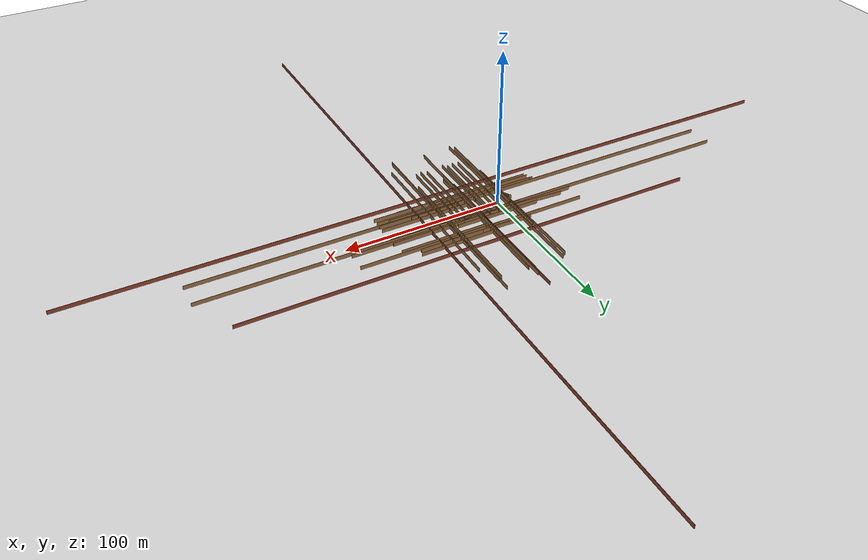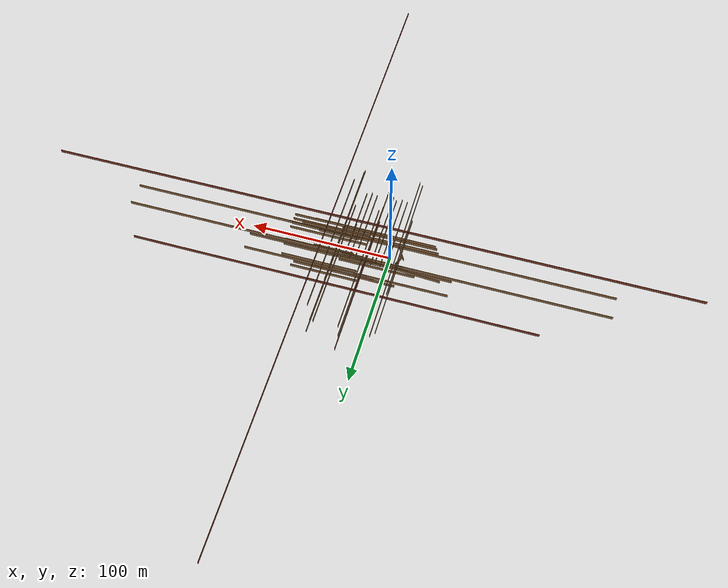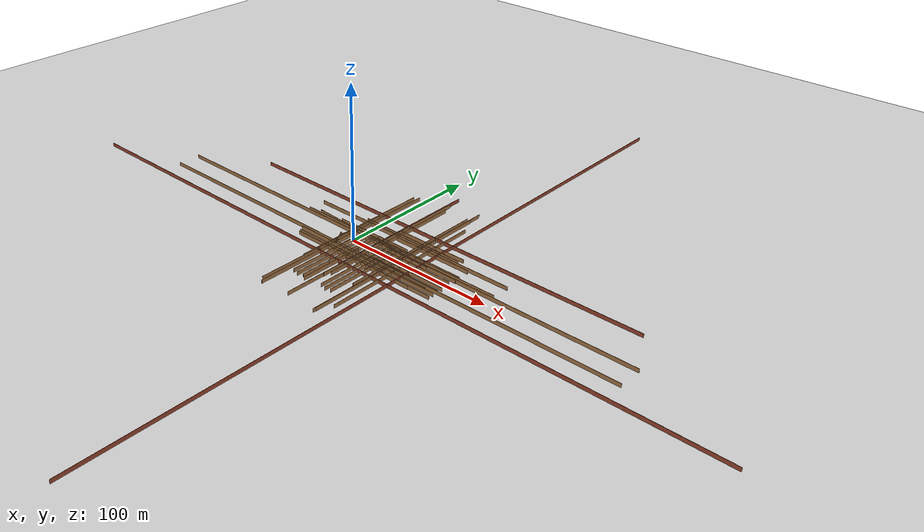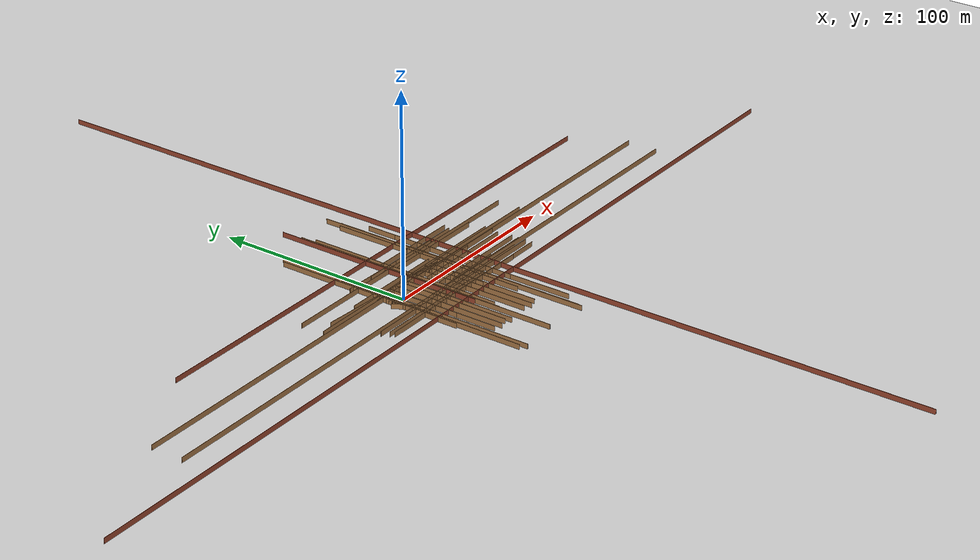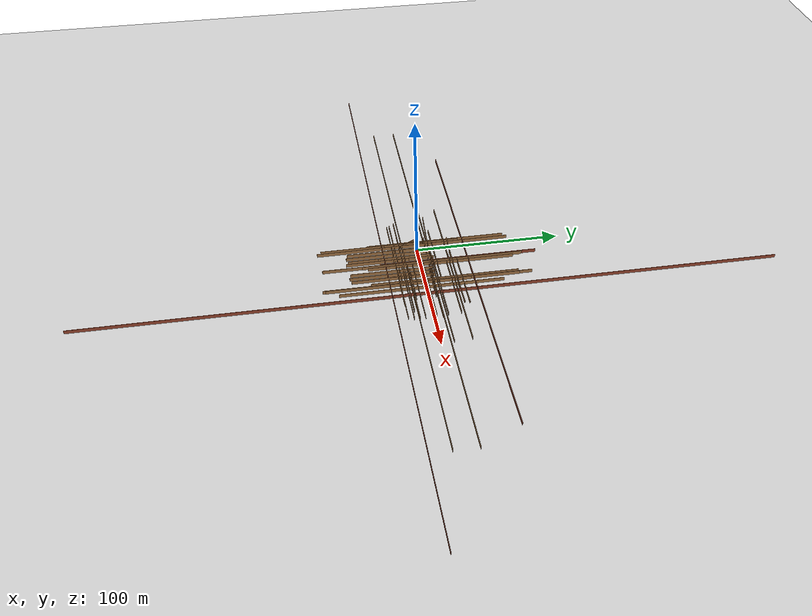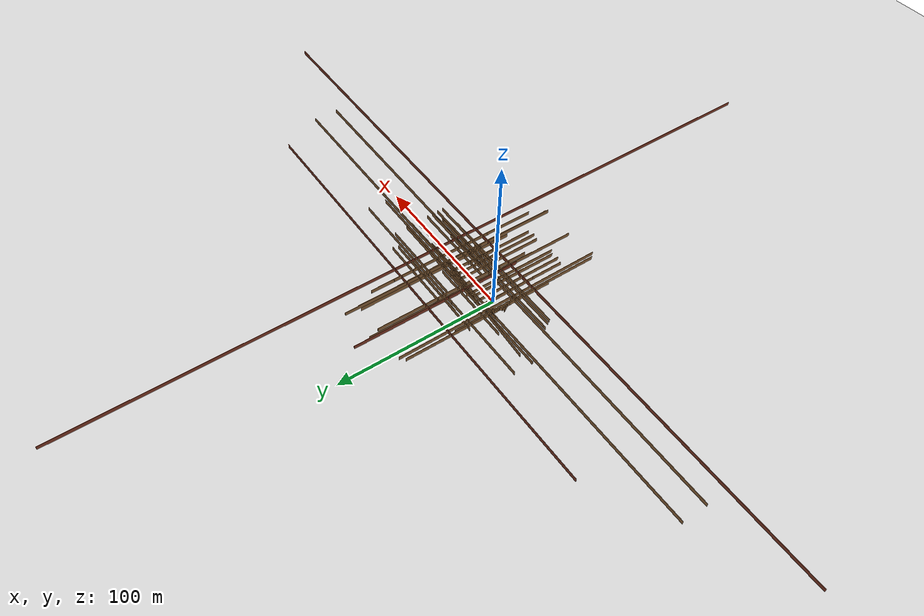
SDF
<sdf version="1.6">
 <world name="default">
  <model name="ground_plane">
   <static>1</static>
   <link name="link">
    <collision name="collision">
     <geometry><plane><normal>0 0 1</normal><size>1000 700</size></plane></geometry>
     <surface><friction><ode><mu>100</mu><mu2>50</mu2></ode></friction></surface>
    </collision>
    <visual name="visual">
     <cast_shadows>0</cast_shadows>
     <geometry><plane><normal>0 0 1</normal><size>1000 700</size></plane></geometry>
     <material>
      <ambient>1.0 1.0 1.0 1.0</ambient>
      <diffuse>0.8 0.8 0.8 1.0</diffuse>
      <specular>0.01 0.01 0.01 1.000000</specular>
     </material>
    </visual>
   </link>
  </model>
  <model name="NamedLocations">
   <static>true</static>
   <link name="DefaultStart"><pose>380 -17 0 0 0 3.14</pose></link>
  </model>
  <model name="floorPlan">
   <pose>-1.03517 -1.87284 0 0 -0 0</pose>
   <link name="Wall_105">
    <collision name="Wall_105_Collision">
     <geometry><box><size>108.30 0.15 2.50</size></box></geometry>
     <pose>0 0 1.25 0 -0 0</pose>
    </collision>
    <visual name="Wall_105_Visual">
     <pose>0 0 1.25 0 -0 0</pose>
     <geometry><box><size>108.30 0.15 2.50</size></box></geometry>
     <material>
      <script><uri>file://media/materials/scripts/gazebo.material</uri><name>Gazebo/Bricks</name></script>
      <ambient>1 1 1 1</ambient>
     </material>
     <meta><layer>0</layer></meta>
    </visual>
    <pose>16.1718 28.4394 0 0 0 -1.5708</pose>
   </link>
   <link name="Wall_107">
    <collision name="Wall_107_Collision">
     <geometry><box><size>8.30 0.15 2.50</size></box></geometry>
     <pose>0 0 1.25 0 -0 0</pose>
    </collision>
    <visual name="Wall_107_Visual">
     <pose>0 0 1.25 0 -0 0</pose>
     <geometry><box><size>8.30 0.15 2.50</size></box></geometry>
     <material>
      <script><uri>file://media/materials/scripts/gazebo.material</uri><name>Gazebo/Wood</name></script>
      <ambient>1 1 1 1</ambient>
     </material>
     <meta><layer>0</layer></meta>
    </visual>
    <pose>16.5968 22.0144 0 0 -0 0</pose>
   </link>
   <link name="Wall_109">
    <collision name="Wall_109_Collision">
     <geometry><box><size>97.90 0.15 2.50</size></box></geometry>
     <pose>0 0 1.25 0 -0 0</pose>
    </collision>
    <visual name="Wall_109_Visual">
     <pose>0 0 1.25 0 -0 0</pose>
     <geometry><box><size>97.90 0.15 2.50</size></box></geometry>
     <material>
      <script><uri>file://media/materials/scripts/gazebo.material</uri><name>Gazebo/Wood</name></script>
      <ambient>1 1 1 1</ambient>
     </material>
     <meta><layer>0</layer></meta>
    </visual>
    <pose>39.004 -15.7975 0 0 0 -1.5708</pose>
   </link>
   <link name="Wall_111">
    <collision name="Wall_111_Collision">
     <geometry><box><size>66.60 0.15 2.50</size></box></geometry>
     <pose>0 0 1.25 0 -0 0</pose>
    </collision>
    <visual name="Wall_111_Visual">
     <pose>0 0 1.25 0 -0 0</pose>
     <geometry><box><size>66.60 0.15 2.50</size></box></geometry>
     <material>
      <script><uri>file://media/materials/scripts/gazebo.material</uri><name>Gazebo/Wood</name></script>
      <ambient>1 1 1 1</ambient>
     </material>
     <meta><layer>0</layer></meta>
    </visual>
    <pose>35.079 -9.99746 0 0 -0 3.14159</pose>
   </link>
   <link name="Wall_112">
    <collision name="Wall_112_Collision">
     <geometry><box><size>16.70 0.15 2.50</size></box></geometry>
     <pose>0 0 1.25 0 -0 0</pose>
    </collision>
    <visual name="Wall_112_Visual">
     <pose>0 0 1.25 0 -0 0</pose>
     <geometry><box><size>16.70 0.15 2.50</size></box></geometry>
     <material>
      <script><uri>file://media/materials/scripts/gazebo.material</uri><name>Gazebo/Wood</name></script>
      <ambient>1 1 1 1</ambient>
     </material>
     <meta><layer>0</layer></meta>
    </visual>
    <pose>31.154 -10.9225 0 0 0 -1.5708</pose>
   </link>
   <link name="Wall_114">
    <collision name="Wall_114_Collision">
     <geometry><box><size>56.20 0.15 2.50</size></box></geometry>
     <pose>0 0 1.25 0 -0 0</pose>
    </collision>
    <visual name="Wall_114_Visual">
     <pose>0 0 1.25 0 -0 0</pose>
     <geometry><box><size>56.20 0.15 2.50</size></box></geometry>
     <material>
      <script><uri>file://media/materials/scripts/gazebo.material</uri><name>Gazebo/Wood</name></script>
      <ambient>1 1 1 1</ambient>
     </material>
     <meta><layer>0</layer></meta>
    </visual>
    <pose>31.5938 -18.4328 0 0 -0 1.5708</pose>
   </link>
   <link name="Wall_115">
    <collision name="Wall_115_Collision">
     <geometry><box><size>64.60 0.15 2.50</size></box></geometry>
     <pose>0 0 1.25 0 -0 0</pose>
    </collision>
    <visual name="Wall_115_Visual">
     <pose>0 0 1.25 0 -0 0</pose>
     <geometry><box><size>64.60 0.15 2.50</size></box></geometry>
     <material>
      <script><uri>file://media/materials/scripts/gazebo.material</uri><name>Gazebo/Wood</name></script>
      <ambient>1 1 1 1</ambient>
     </material>
     <meta><layer>0</layer></meta>
    </visual>
    <pose>27.7938 -15.1328 0 0 -0 3.14159</pose>
   </link>
   <link name="Wall_116">
    <collision name="Wall_116_Collision">
     <geometry><box><size>56.20 0.15 2.50</size></box></geometry>
     <pose>0 0 1.25 0 -0 0</pose>
    </collision>
    <visual name="Wall_116_Visual">
     <pose>0 0 1.25 0 -0 0</pose>
     <geometry><box><size>56.20 0.15 2.50</size></box></geometry>
     <material>
      <script><uri>file://media/materials/scripts/gazebo.material</uri><name>Gazebo/Wood</name></script>
      <ambient>1 1 1 1</ambient>
     </material>
     <meta><layer>0</layer></meta>
    </visual>
    <pose>23.9938 -18.4328 0 0 0 -1.5708</pose>
   </link>
   <link name="Wall_118">
    <collision name="Wall_118_Collision">
     <geometry><box><size>8.30 0.15 2.50</size></box></geometry>
     <pose>0 0 1.25 0 -0 0</pose>
    </collision>
    <visual name="Wall_118_Visual">
     <pose>0 0 1.25 0 -0 0</pose>
     <geometry><box><size>8.30 0.15 2.50</size></box></geometry>
     <material>
      <script><uri>file://media/materials/scripts/gazebo.material</uri><name>Gazebo/Wood</name></script>
      <ambient>1 1 1 1</ambient>
     </material>
     <meta><layer>0</layer></meta>
    </visual>
    <pose>24.1778 -10.3922 0 0 0 -1.5708</pose>
   </link>
   <link name="Wall_120">
    <collision name="Wall_120_Collision">
     <geometry><box><size>97.90 0.15 2.50</size></box></geometry>
     <pose>0 0 1.25 0 -0 0</pose>
    </collision>
    <visual name="Wall_120_Visual">
     <pose>0 0 1.25 0 -0 0</pose>
     <geometry><box><size>97.90 0.15 2.50</size></box></geometry>
     <material>
      <script><uri>file://media/materials/scripts/gazebo.material</uri><name>Gazebo/Wood</name></script>
      <ambient>1 1 1 1</ambient>
     </material>
     <meta><layer>0</layer></meta>
    </visual>
    <pose>18.2324 -9.96721 0 0 -0 3.14159</pose>
   </link>
   <link name="Wall_121">
    <collision name="Wall_121_Collision">
     <geometry><box><size>10.40 0.15 2.50</size></box></geometry>
     <pose>0 0 1.25 0 -0 0</pose>
    </collision>
    <visual name="Wall_121_Visual">
     <pose>0 0 1.25 0 -0 0</pose>
     <geometry><box><size>10.40 0.15 2.50</size></box></geometry>
     <material>
      <script><uri>file://media/materials/scripts/gazebo.material</uri><name>Gazebo/Wood</name></script>
      <ambient>1 1 1 1</ambient>
     </material>
     <meta><layer>0</layer></meta>
    </visual>
    <pose>12.4324 -10.5172 0 0 0 -1.5708</pose>
   </link>
   <link name="Wall_123">
    <collision name="Wall_123_Collision">
     <geometry><box><size>97.90 0.15 2.50</size></box></geometry>
     <pose>0 0 1.25 0 -0 0</pose>
    </collision>
    <visual name="Wall_123_Visual">
     <pose>0 0 1.25 0 -0 0</pose>
     <geometry><box><size>97.90 0.15 2.50</size></box></geometry>
     <material>
      <script><uri>file://media/materials/scripts/gazebo.material</uri><name>Gazebo/Wood</name></script>
      <ambient>1 1 1 1</ambient>
     </material>
     <meta><layer>0</layer></meta>
    </visual>
    <pose>16.8339 -15.8579 0 0 0 -1.5708</pose>
   </link>
   <link name="Wall_125">
    <collision name="Wall_125_Collision">
     <geometry><box><size>60.40 0.15 2.50</size></box></geometry>
     <pose>0 0 1.25 0 -0 0</pose>
    </collision>
    <visual name="Wall_125_Visual">
     <pose>0 0 1.25 0 -0 0</pose>
     <geometry><box><size>60.40 0.15 2.50</size></box></geometry>
     <material>
      <script><uri>file://media/materials/scripts/gazebo.material</uri><name>Gazebo/Wood</name></script>
      <ambient>1 1 1 1</ambient>
     </material>
     <meta><layer>0</layer></meta>
    </visual>
    <pose>12.1458 -18.0541 0 0 0 -1.5708</pose>
   </link>
   <link name="Wall_127">
    <collision name="Wall_127_Collision">
     <geometry><box><size>95.80 0.15 2.50</size></box></geometry>
     <pose>0 0 1.25 0 -0 0</pose>
    </collision>
    <visual name="Wall_127_Visual">
     <pose>0 0 1.25 0 -0 0</pose>
     <geometry><box><size>95.80 0.15 2.50</size></box></geometry>
     <material>
      <script><uri>file://media/materials/scripts/gazebo.material</uri><name>Gazebo/Wood</name></script>
      <ambient>1 1 1 1</ambient>
     </material>
     <meta><layer>0</layer></meta>
    </visual>
    <pose>-5.05877 -16.1593 0 0 0 -1.5708</pose>
   </link>
   <link name="Wall_164">
    <collision name="Wall_164_Collision">
     <geometry><box><size>27.10 0.15 2.50</size></box></geometry>
     <pose>0 0 1.25 0 -0 0</pose>
    </collision>
    <visual name="Wall_164_Visual">
     <pose>0 0 1.25 0 -0 0</pose>
     <geometry><box><size>27.10 0.15 2.50</size></box></geometry>
     <material>
      <script><uri>file://media/materials/scripts/gazebo.material</uri><name>Gazebo/Wood</name></script>
      <ambient>1 1 1 1</ambient>
     </material>
     <meta><layer>0</layer></meta>
    </visual>
    <pose>-5.05442 -6.49986 0 0 -0 1.5708</pose>
   </link>
   <link name="Wall_165">
    <collision name="Wall_165_Collision">
     <geometry><box><size>4.20 0.15 2.50</size></box></geometry>
     <pose>0 0 1.25 0 -0 0</pose>
    </collision>
    <visual name="Wall_165_Visual">
     <pose>0 0 1.25 0 -0 0</pose>
     <geometry><box><size>4.20 0.15 2.50</size></box></geometry>
     <material>
      <script><uri>file://media/materials/scripts/gazebo.material</uri><name>Gazebo/Wood</name></script>
      <ambient>1 1 1 1</ambient>
     </material>
     <meta><layer>0</layer></meta>
    </visual>
    <pose>-5.09971 -4.78082 0 0 -0 1.8326</pose>
   </link>
   <link name="Wall_166">
    <collision name="Wall_166_Collision">
     <geometry><box><size>12.50 0.15 2.50</size></box></geometry>
     <pose>0 0 1.25 0 -0 0</pose>
    </collision>
    <visual name="Wall_166_Visual">
     <pose>0 0 1.25 0 -0 0</pose>
     <geometry><box><size>12.50 0.15 2.50</size></box></geometry>
     <material>
      <script><uri>file://media/materials/scripts/gazebo.material</uri><name>Gazebo/Wood</name></script>
      <ambient>1 1 1 1</ambient>
     </material>
     <meta><layer>0</layer></meta>
    </visual>
    <pose>-5.4825 -4.02722 0 0 -0 2.0944</pose>
   </link>
   <link name="Wall_167">
    <collision name="Wall_167_Collision">
     <geometry><box><size>6.20 0.15 2.50</size></box></geometry>
     <pose>0 0 1.25 0 -0 0</pose>
    </collision>
    <visual name="Wall_167_Visual">
     <pose>0 0 1.25 0 -0 0</pose>
     <geometry><box><size>6.20 0.15 2.50</size></box></geometry>
     <material>
      <script><uri>file://media/materials/scripts/gazebo.material</uri><name>Gazebo/Wood</name></script>
      <ambient>1 1 1 1</ambient>
     </material>
     <meta><layer>0</layer></meta>
    </visual>
    <pose>-5.82 -3.14265 0 0 -0 1.5708</pose>
   </link>
   <link name="Wall_168">
    <collision name="Wall_168_Collision">
     <geometry><box><size>8.30 0.15 2.50</size></box></geometry>
     <pose>0 0 1.25 0 -0 0</pose>
    </collision>
    <visual name="Wall_168_Visual">
     <pose>0 0 1.25 0 -0 0</pose>
     <geometry><box><size>8.30 0.15 2.50</size></box></geometry>
     <material>
      <script><uri>file://media/materials/scripts/gazebo.material</uri><name>Gazebo/Wood</name></script>
      <ambient>1 1 1 1</ambient>
     </material>
     <meta><layer>0</layer></meta>
    </visual>
    <pose>-5.93 -2.43213 0 0 -0 1.8326</pose>
   </link>
   <link name="Wall_171">
    <collision name="Wall_171_Collision">
     <geometry><box><size>6.20 0.15 2.50</size></box></geometry>
     <pose>0 0 1.25 0 -0 0</pose>
    </collision>
    <visual name="Wall_171_Visual">
     <pose>0 0 1.25 0 -0 0</pose>
     <geometry><box><size>6.20 0.15 2.50</size></box></geometry>
     <material>
      <script><uri>file://media/materials/scripts/gazebo.material</uri><name>Gazebo/Wood</name></script>
      <ambient>1 1 1 1</ambient>
     </material>
     <meta><layer>0</layer></meta>
    </visual>
    <pose>-6.04 -0.021614 0 0 -0 1.5708</pose>
   </link>
   <link name="Wall_172">
    <collision name="Wall_172_Collision">
     <geometry><box><size>10.40 0.15 2.50</size></box></geometry>
     <pose>0 0 1.25 0 -0 0</pose>
    </collision>
    <visual name="Wall_172_Visual">
     <pose>0 0 1.25 0 -0 0</pose>
     <geometry><box><size>10.40 0.15 2.50</size></box></geometry>
     <material>
      <script><uri>file://media/materials/scripts/gazebo.material</uri><name>Gazebo/Wood</name></script>
      <ambient>1 1 1 1</ambient>
     </material>
     <meta><layer>0</layer></meta>
    </visual>
    <pose>-6.04 0.828386 0 0 -0 1.5708</pose>
   </link>
   <link name="Wall_173">
    <collision name="Wall_173_Collision">
     <geometry><box><size>6.20 0.15 2.50</size></box></geometry>
     <pose>0 0 1.25 0 -0 0</pose>
    </collision>
    <visual name="Wall_173_Visual">
     <pose>0 0 1.25 0 -0 0</pose>
     <geometry><box><size>6.20 0.15 2.50</size></box></geometry>
     <material>
      <script><uri>file://media/materials/scripts/gazebo.material</uri><name>Gazebo/Wood</name></script>
      <ambient>1 1 1 1</ambient>
     </material>
     <meta><layer>0</layer></meta>
    </visual>
    <pose>-6.04 1.67839 0 0 -0 1.5708</pose>
   </link>
   <link name="Wall_174">
    <collision name="Wall_174_Collision">
     <geometry><box><size>6.20 0.15 2.50</size></box></geometry>
     <pose>0 0 1.25 0 -0 0</pose>
    </collision>
    <visual name="Wall_174_Visual">
     <pose>0 0 1.25 0 -0 0</pose>
     <geometry><box><size>6.20 0.15 2.50</size></box></geometry>
     <material>
      <script><uri>file://media/materials/scripts/gazebo.material</uri><name>Gazebo/Wood</name></script>
      <ambient>1 1 1 1</ambient>
     </material>
     <meta><layer>0</layer></meta>
    </visual>
    <pose>-5.96235 2.26816 0 0 -0 1.309</pose>
   </link>
   <link name="Wall_175">
    <collision name="Wall_175_Collision">
     <geometry><box><size>5.70 0.15 2.50</size></box></geometry>
     <pose>0 0 1.25 0 -0 0</pose>
    </collision>
    <visual name="Wall_175_Visual">
     <pose>0 0 1.25 0 -0 0</pose>
     <geometry><box><size>5.70 0.15 2.50</size></box></geometry>
     <material>
      <script><uri>file://media/materials/scripts/gazebo.material</uri><name>Gazebo/Wood</name></script>
      <ambient>1 1 1 1</ambient>
     </material>
     <meta><layer>0</layer></meta>
    </visual>
    <pose>-5.82391 2.82035 0 0 -0 1.34312</pose>
   </link>
   <link name="Wall_176">
    <collision name="Wall_176_Collision">
     <geometry><box><size>7.30 0.15 2.50</size></box></geometry>
     <pose>0 0 1.25 0 -0 0</pose>
    </collision>
    <visual name="Wall_176_Visual">
     <pose>0 0 1.25 0 -0 0</pose>
     <geometry><box><size>7.30 0.15 2.50</size></box></geometry>
     <material>
      <script><uri>file://media/materials/scripts/gazebo.material</uri><name>Gazebo/Wood</name></script>
      <ambient>1 1 1 1</ambient>
     </material>
     <meta><layer>0</layer></meta>
    </visual>
    <pose>-5.60659 3.41318 0 0 -0 1.12842</pose>
   </link>
   <link name="Wall_177">
    <collision name="Wall_177_Collision">
     <geometry><box><size>7.00 0.15 2.50</size></box></geometry>
     <pose>0 0 1.25 0 -0 0</pose>
    </collision>
    <visual name="Wall_177_Visual">
     <pose>0 0 1.25 0 -0 0</pose>
     <geometry><box><size>7.00 0.15 2.50</size></box></geometry>
     <material>
      <script><uri>file://media/materials/scripts/gazebo.material</uri><name>Gazebo/Wood</name></script>
      <ambient>1 1 1 1</ambient>
     </material>
     <meta><layer>0</layer></meta>
    </visual>
    <pose>-5.34572 4.07405 0 0 -0 1.26492</pose>
   </link>
   <link name="Wall_178">
    <collision name="Wall_178_Collision">
     <geometry><box><size>4.20 0.15 2.50</size></box></geometry>
     <pose>0 0 1.25 0 -0 0</pose>
    </collision>
    <visual name="Wall_178_Visual">
     <pose>0 0 1.25 0 -0 0</pose>
     <geometry><box><size>4.20 0.15 2.50</size></box></geometry>
     <material>
      <script><uri>file://media/materials/scripts/gazebo.material</uri><name>Gazebo/Wood</name></script>
      <ambient>1 1 1 1</ambient>
     </material>
     <meta><layer>0</layer></meta>
    </visual>
    <pose>-5.15387 4.55604 0 0 -0 1.0472</pose>
   </link>
   <link name="Wall_179">
    <collision name="Wall_179_Collision">
     <geometry><box><size>31.20 0.15 2.50</size></box></geometry>
     <pose>0 0 1.25 0 -0 0</pose>
    </collision>
    <visual name="Wall_179_Visual">
     <pose>0 0 1.25 0 -0 0</pose>
     <geometry><box><size>31.20 0.15 2.50</size></box></geometry>
     <material>
      <script><uri>file://media/materials/scripts/gazebo.material</uri><name>Gazebo/Wood</name></script>
      <ambient>1 1 1 1</ambient>
     </material>
     <meta><layer>0</layer></meta>
    </visual>
    <pose>-5.06637 6.5076 0 0 -0 1.5708</pose>
   </link>
   <link name="Wall_180">
    <collision name="Wall_180_Collision">
     <geometry><box><size>8.30 0.15 2.50</size></box></geometry>
     <pose>0 0 1.25 0 -0 0</pose>
    </collision>
    <visual name="Wall_180_Visual">
     <pose>0 0 1.25 0 -0 0</pose>
     <geometry><box><size>8.30 0.15 2.50</size></box></geometry>
     <material>
      <script><uri>file://media/materials/scripts/gazebo.material</uri><name>Gazebo/Wood</name></script>
      <ambient>1 1 1 1</ambient>
     </material>
     <meta><layer>0</layer></meta>
    </visual>
    <pose>-5.49137 8.3076 0 0 -0 3.14159</pose>
   </link>
   <link name="Wall_229">
    <collision name="Wall_229_Collision">
     <geometry><box><size>56.20 0.15 2.50</size></box></geometry>
     <pose>0 0 1.25 0 -0 0</pose>
    </collision>
    <visual name="Wall_229_Visual">
     <pose>0 0 1.25 0 -0 0</pose>
     <geometry><box><size>56.20 0.15 2.50</size></box></geometry>
     <material>
      <script><uri>file://media/materials/scripts/gazebo.material</uri><name>Gazebo/Wood</name></script>
      <ambient>1 1 1 1</ambient>
     </material>
     <meta><layer>0</layer></meta>
    </visual>
    <pose>1.67781 -18.4351 0 0 0 -1.5708</pose>
   </link>
   <link name="Wall_23">
    <collision name="Wall_23_Collision">
     <geometry><box><size>133.30 0.15 2.50</size></box></geometry>
     <pose>0 0 1.25 0 -0 0</pose>
    </collision>
    <visual name="Wall_23_Visual">
     <pose>0 0 1.25 0 -0 0</pose>
     <geometry><box><size>133.30 0.15 2.50</size></box></geometry>
     <material>
      <script><uri>file://media/materials/scripts/gazebo.material</uri><name>Gazebo/Wood</name></script>
      <ambient>1 1 1 1</ambient>
     </material>
     <meta><layer>0</layer></meta>
    </visual>
    <pose>-2.91083 -0.082161 0 0 0 -1.56638</pose>
   </link>
   <link name="Wall_231">
    <collision name="Wall_231_Collision">
     <geometry><box><size>66.60 0.15 2.50</size></box></geometry>
     <pose>0 0 1.25 0 -0 0</pose>
    </collision>
    <visual name="Wall_231_Visual">
     <pose>0 0 1.25 0 -0 0</pose>
     <geometry><box><size>66.60 0.15 2.50</size></box></geometry>
     <material>
      <script><uri>file://media/materials/scripts/gazebo.material</uri><name>Gazebo/Wood</name></script>
      <ambient>1 1 1 1</ambient>
     </material>
     <meta><layer>0</layer></meta>
    </visual>
    <pose>5.60281 -15.1351 0 0 -0 0</pose>
   </link>
   <link name="Wall_232">
    <collision name="Wall_232_Collision">
     <geometry><box><size>56.20 0.15 2.50</size></box></geometry>
     <pose>0 0 1.25 0 -0 0</pose>
    </collision>
    <visual name="Wall_232_Visual">
     <pose>0 0 1.25 0 -0 0</pose>
     <geometry><box><size>56.20 0.15 2.50</size></box></geometry>
     <material>
      <script><uri>file://media/materials/scripts/gazebo.material</uri><name>Gazebo/Wood</name></script>
      <ambient>1 1 1 1</ambient>
     </material>
     <meta><layer>0</layer></meta>
    </visual>
    <pose>9.52781 -18.4351 0 0 0 -1.5708</pose>
   </link>
   <link name="Wall_234">
    <collision name="Wall_234_Collision">
     <geometry><box><size>29.20 0.15 2.50</size></box></geometry>
     <pose>0 0 1.25 0 -0 0</pose>
    </collision>
    <visual name="Wall_234_Visual">
     <pose>0 0 1.25 0 -0 0</pose>
     <geometry><box><size>29.20 0.15 2.50</size></box></geometry>
     <material>
      <script><uri>file://media/materials/scripts/gazebo.material</uri><name>Gazebo/Wood</name></script>
      <ambient>1 1 1 1</ambient>
     </material>
     <meta><layer>0</layer></meta>
    </visual>
    <pose>1.44911 -11.6186 0 0 0 -1.55714</pose>
   </link>
   <link name="Wall_235">
    <collision name="Wall_235_Collision">
     <geometry><box><size>68.70 0.15 2.50</size></box></geometry>
     <pose>0 0 1.25 0 -0 0</pose>
    </collision>
    <visual name="Wall_235_Visual">
     <pose>0 0 1.25 0 -0 0</pose>
     <geometry><box><size>68.70 0.15 2.50</size></box></geometry>
     <material>
      <script><uri>file://media/materials/scripts/gazebo.material</uri><name>Gazebo/Wood</name></script>
      <ambient>1 1 1 1</ambient>
     </material>
     <meta><layer>0</layer></meta>
    </visual>
    <pose>5.49911 -13.2936 0 0 -0 0</pose>
   </link>
   <link name="Wall_238">
    <collision name="Wall_238_Collision">
     <geometry><box><size>29.20 0.15 2.50</size></box></geometry>
     <pose>0 0 1.25 0 -0 0</pose>
    </collision>
    <visual name="Wall_238_Visual">
     <pose>0 0 1.25 0 -0 0</pose>
     <geometry><box><size>29.20 0.15 2.50</size></box></geometry>
     <material>
      <script><uri>file://media/materials/scripts/gazebo.material</uri><name>Gazebo/Wood</name></script>
      <ambient>1 1 1 1</ambient>
     </material>
     <meta><layer>0</layer></meta>
    </visual>
    <pose>9.61374 -11.5957 0 0 0 -1.5708</pose>
   </link>
   <link name="Wall_240">
    <collision name="Wall_240_Collision">
     <geometry><box><size>68.70 0.15 2.50</size></box></geometry>
     <pose>0 0 1.25 0 -0 0</pose>
    </collision>
    <visual name="Wall_240_Visual">
     <pose>0 0 1.25 0 -0 0</pose>
     <geometry><box><size>68.70 0.15 2.50</size></box></geometry>
     <material>
      <script><uri>file://media/materials/scripts/gazebo.material</uri><name>Gazebo/Wood</name></script>
      <ambient>1 1 1 1</ambient>
     </material>
     <meta><layer>0</layer></meta>
    </visual>
    <pose>5.47624 -9.94362 0 0 -0 0</pose>
   </link>
   <link name="Wall_242">
    <collision name="Wall_242_Collision">
     <geometry><box><size>56.20 0.15 2.50</size></box></geometry>
     <pose>0 0 1.25 0 -0 0</pose>
    </collision>
    <visual name="Wall_242_Visual">
     <pose>0 0 1.25 0 -0 0</pose>
     <geometry><box><size>56.20 0.15 2.50</size></box></geometry>
     <material>
      <script><uri>file://media/materials/scripts/gazebo.material</uri><name>Gazebo/Wood</name></script>
      <ambient>1 1 1 1</ambient>
     </material>
     <meta><layer>0</layer></meta>
    </visual>
    <pose>47.3564 -11.1866 0 0 -0 0</pose>
   </link>
   <link name="Wall_244">
    <collision name="Wall_244_Collision">
     <geometry><box><size>56.20 0.15 2.50</size></box></geometry>
     <pose>0 0 1.25 0 -0 0</pose>
    </collision>
    <visual name="Wall_244_Visual">
     <pose>0 0 1.25 0 -0 0</pose>
     <geometry><box><size>56.20 0.15 2.50</size></box></geometry>
     <material>
      <script><uri>file://media/materials/scripts/gazebo.material</uri><name>Gazebo/Wood</name></script>
      <ambient>1 1 1 1</ambient>
     </material>
     <meta><layer>0</layer></meta>
    </visual>
    <pose>47.3564 -7.44743 0 0 -0 0</pose>
   </link>
   <link name="Wall_246">
    <collision name="Wall_246_Collision">
     <geometry><box><size>56.20 0.15 2.50</size></box></geometry>
     <pose>0 0 1.25 0 -0 0</pose>
    </collision>
    <visual name="Wall_246_Visual">
     <pose>0 0 1.25 0 -0 0</pose>
     <geometry><box><size>56.20 0.15 2.50</size></box></geometry>
     <material>
      <script><uri>file://media/materials/scripts/gazebo.material</uri><name>Gazebo/Wood</name></script>
      <ambient>1 1 1 1</ambient>
     </material>
     <meta><layer>0</layer></meta>
    </visual>
    <pose>47.426 7.42213 0 0 -0 0</pose>
   </link>
   <link name="Wall_248">
    <collision name="Wall_248_Collision">
     <geometry><box><size>132.90 0.15 2.50</size></box></geometry>
     <pose>0 0 1.25 0 -0 0</pose>
    </collision>
    <visual name="Wall_248_Visual">
     <pose>0 0 1.25 0 -0 0</pose>
     <geometry><box><size>132.90 0.15 2.50</size></box></geometry>
     <material>
      <script><uri>file://media/materials/scripts/gazebo.material</uri><name>Gazebo/Wood</name></script>
      <ambient>1 1 1 1</ambient>
     </material>
     <meta><layer>0</layer></meta>
    </visual>
    <pose>38.697 -0.105323 0 0 0 -1.57178</pose>
   </link>
   <link name="Wall_265">
    <collision name="Wall_265_Collision">
     <geometry><box><size>58.30 0.15 2.50</size></box></geometry>
     <pose>0 0 1.25 0 -0 0</pose>
    </collision>
    <visual name="Wall_265_Visual">
     <pose>0 0 1.25 0 -0 0</pose>
     <geometry><box><size>58.30 0.15 2.50</size></box></geometry>
     <material>
      <script><uri>file://media/materials/scripts/gazebo.material</uri><name>Gazebo/Wood</name></script>
      <ambient>1 1 1 1</ambient>
     </material>
     <meta><layer>0</layer></meta>
    </visual>
    <pose>5.58226 -18.4924 0 0 0 -1.5708</pose>
   </link>
   <link name="Wall_267">
    <collision name="Wall_267_Collision">
     <geometry><box><size>58.30 0.15 2.50</size></box></geometry>
     <pose>0 0 1.25 0 -0 0</pose>
    </collision>
    <visual name="Wall_267_Visual">
     <pose>0 0 1.25 0 -0 0</pose>
     <geometry><box><size>58.30 0.15 2.50</size></box></geometry>
     <material>
      <script><uri>file://media/materials/scripts/gazebo.material</uri><name>Gazebo/Wood</name></script>
      <ambient>1 1 1 1</ambient>
     </material>
     <meta><layer>0</layer></meta>
    </visual>
    <pose>27.8996 -18.4924 0 0 0 -1.5708</pose>
   </link>
   <link name="Wall_28">
    <collision name="Wall_28_Collision">
     <geometry><box><size>347.50 0.15 2.50</size></box></geometry>
     <pose>0 0 1.25 0 -0 0</pose>
    </collision>
    <visual name="Wall_28_Visual">
     <pose>0 0 1.25 0 -0 0</pose>
     <geometry><box><size>347.50 0.15 2.50</size></box></geometry>
     <material>
      <script><uri>file://media/materials/scripts/gazebo.material</uri><name>Gazebo/Wood</name></script>
      <ambient>1 1 1 1</ambient>
     </material>
     <meta><layer>0</layer></meta>
    </visual>
    <pose>17.9067 -8.00732 0 0 0 -8e-06</pose>
   </link>
   <link name="Wall_30">
    <collision name="Wall_30_Collision">
     <geometry><box><size>347.80 0.15 2.50</size></box></geometry>
     <pose>0 0 1.25 0 -0 0</pose>
    </collision>
    <visual name="Wall_30_Visual">
     <pose>0 0 1.25 0 -0 0</pose>
     <geometry><box><size>347.80 0.15 2.50</size></box></geometry>
     <material>
      <script><uri>file://media/materials/scripts/gazebo.material</uri><name>Gazebo/Wood</name></script>
      <ambient>1 1 1 1</ambient>
     </material>
     <meta><layer>0</layer></meta>
    </visual>
    <pose>17.958 7.79684 0 0 -0 3.14159</pose>
   </link>
   <link name="Wall_33">
    <collision name="Wall_33_Collision">
     <geometry><box><size>71.00 0.15 2.50</size></box></geometry>
     <pose>0 0 1.25 0 -0 0</pose>
    </collision>
    <visual name="Wall_33_Visual">
     <pose>0 0 1.25 0 -0 0</pose>
     <geometry><box><size>71.00 0.15 2.50</size></box></geometry>
     <material>
      <script><uri>file://media/materials/scripts/gazebo.material</uri><name>Gazebo/Wood</name></script>
      <ambient>1 1 1 1</ambient>
     </material>
     <meta><layer>0</layer></meta>
    </visual>
    <pose>-1.83025 10.1992 0 0 0 -0.056901</pose>
   </link>
   <link name="Wall_36">
    <collision name="Wall_36_Collision">
     <geometry><box><size>95.80 0.15 2.50</size></box></geometry>
     <pose>0 0 1.25 0 -0 0</pose>
    </collision>
    <visual name="Wall_36_Visual">
     <pose>0 0 1.25 0 -0 0</pose>
     <geometry><box><size>95.80 0.15 2.50</size></box></geometry>
     <material>
      <script><uri>file://media/materials/scripts/gazebo.material</uri><name>Gazebo/Wood</name></script>
      <ambient>1 1 1 1</ambient>
     </material>
     <meta><layer>0</layer></meta>
    </visual>
    <pose>-6.00935 16.1122 0 0 -0 1.5708</pose>
   </link>
   <link name="Wall_40">
    <collision name="Wall_40_Collision">
     <geometry><box><size>38.20 0.15 2.50</size></box></geometry>
     <pose>0 0 1.25 0 -0 0</pose>
    </collision>
    <visual name="Wall_40_Visual">
     <pose>0 0 1.25 0 -0 0</pose>
     <geometry><box><size>38.20 0.15 2.50</size></box></geometry>
     <material>
      <script><uri>file://media/materials/scripts/gazebo.material</uri><name>Gazebo/Wood</name></script>
      <ambient>1 1 1 1</ambient>
     </material>
     <meta><layer>0</layer></meta>
    </visual>
    <pose>14.8546 10.7422 0 0 -0 0.027081</pose>
   </link>
   <link name="Wall_41">
    <collision name="Wall_41_Collision">
     <geometry><box><size>110.40 0.15 2.50</size></box></geometry>
     <pose>0 0 1.25 0 -0 0</pose>
    </collision>
    <visual name="Wall_41_Visual">
     <pose>0 0 1.25 0 -0 0</pose>
     <geometry><box><size>110.40 0.15 2.50</size></box></geometry>
     <material>
      <script><uri>file://media/materials/scripts/gazebo.material</uri><name>Gazebo/Wood</name></script>
      <ambient>1 1 1 1</ambient>
     </material>
     <meta><layer>0</layer></meta>
    </visual>
    <pose>17.0696 17.3122 0 0 -0 1.5708</pose>
   </link>
   <link name="Wall_43">
    <collision name="Wall_43_Collision">
     <geometry><box><size>54.10 0.15 2.50</size></box></geometry>
     <pose>0 0 1.25 0 -0 0</pose>
    </collision>
    <visual name="Wall_43_Visual">
     <pose>0 0 1.25 0 -0 0</pose>
     <geometry><box><size>54.10 0.15 2.50</size></box></geometry>
     <material>
      <script><uri>file://media/materials/scripts/gazebo.material</uri><name>Gazebo/Wood</name></script>
      <ambient>1 1 1 1</ambient>
     </material>
     <meta><layer>0</layer></meta>
    </visual>
    <pose>7.4365 13.1926 0 0 -0 0</pose>
   </link>
   <link name="Wall_45">
    <collision name="Wall_45_Collision">
     <geometry><box><size>145.80 0.15 2.50</size></box></geometry>
     <pose>0 0 1.25 0 -0 0</pose>
    </collision>
    <visual name="Wall_45_Visual">
     <pose>0 0 1.25 0 -0 0</pose>
     <geometry><box><size>145.80 0.15 2.50</size></box></geometry>
     <material>
      <script><uri>file://media/materials/scripts/gazebo.material</uri><name>Gazebo/Wood</name></script>
      <ambient>1 1 1 1</ambient>
     </material>
     <meta><layer>0</layer></meta>
    </visual>
    <pose>27.8734 9.89578 0 0 -0 3.14159</pose>
   </link>
   <link name="Wall_46">
    <collision name="Wall_46_Collision">
     <geometry><box><size>100.00 0.15 2.50</size></box></geometry>
     <pose>0 0 1.25 0 -0 0</pose>
    </collision>
    <visual name="Wall_46_Visual">
     <pose>0 0 1.25 0 -0 0</pose>
     <geometry><box><size>100.00 0.15 2.50</size></box></geometry>
     <material>
      <script><uri>file://media/materials/scripts/gazebo.material</uri><name>Gazebo/Wood</name></script>
      <ambient>1 1 1 1</ambient>
     </material>
     <meta><layer>0</layer></meta>
    </visual>
    <pose>19.1984 15.8208 0 0 -0 1.5708</pose>
   </link>
   <link name="Wall_57">
    <collision name="Wall_57_Collision">
     <geometry><box><size>100.00 0.15 2.50</size></box></geometry>
     <pose>0 0 1.25 0 -0 0</pose>
    </collision>
    <visual name="Wall_57_Visual">
     <pose>0 0 1.25 0 -0 0</pose>
     <geometry><box><size>100.00 0.15 2.50</size></box></geometry>
     <material>
      <script><uri>file://media/materials/scripts/gazebo.material</uri><name>Gazebo/Wood</name></script>
      <ambient>1 1 1 1</ambient>
     </material>
     <meta><layer>0</layer></meta>
    </visual>
    <pose>36.5484 15.8208 0 0 -0 1.5708</pose>
   </link>
   <link name="Wall_59">
    <collision name="Wall_59_Collision">
     <geometry><box><size>145.80 0.15 2.50</size></box></geometry>
     <pose>0 0 1.25 0 -0 0</pose>
    </collision>
    <visual name="Wall_59_Visual">
     <pose>0 0 1.25 0 -0 0</pose>
     <geometry><box><size>145.80 0.15 2.50</size></box></geometry>
     <material>
      <script><uri>file://media/materials/scripts/gazebo.material</uri><name>Gazebo/Wood</name></script>
      <ambient>1 1 1 1</ambient>
     </material>
     <meta><layer>0</layer></meta>
    </visual>
    <pose>27.8734 21.7458 0 0 -0 0</pose>
   </link>
   <link name="Wall_61">
    <collision name="Wall_61_Collision">
     <geometry><box><size>57.60 0.15 2.50</size></box></geometry>
     <pose>0 0 1.25 0 -0 0</pose>
    </collision>
    <visual name="Wall_61_Visual">
     <pose>0 0 1.25 0 -0 0</pose>
     <geometry><box><size>57.60 0.15 2.50</size></box></geometry>
     <material>
      <script><uri>file://media/materials/scripts/gazebo.material</uri><name>Gazebo/Wood</name></script>
      <ambient>1 1 1 1</ambient>
     </material>
     <meta><layer>0</layer></meta>
    </visual>
    <pose>20.4546 23.8422 0 0 0 -0.017723</pose>
   </link>
   <link name="Wall_63">
    <collision name="Wall_63_Collision">
     <geometry><box><size>58.30 0.15 2.50</size></box></geometry>
     <pose>0 0 1.25 0 -0 0</pose>
    </collision>
    <visual name="Wall_63_Visual">
     <pose>0 0 1.25 0 -0 0</pose>
     <geometry><box><size>58.30 0.15 2.50</size></box></geometry>
     <material>
      <script><uri>file://media/materials/scripts/gazebo.material</uri><name>Gazebo/Wood</name></script>
      <ambient>1 1 1 1</ambient>
     </material>
     <meta><layer>0</layer></meta>
    </visual>
    <pose>35.0287 23.7786 0 0 -0 0</pose>
   </link>
   <link name="Wall_64">
    <collision name="Wall_64_Collision">
     <geometry><box><size>91.60 0.15 2.50</size></box></geometry>
     <pose>0 0 1.25 0 -0 0</pose>
    </collision>
    <visual name="Wall_64_Visual">
     <pose>0 0 1.25 0 -0 0</pose>
     <geometry><box><size>91.60 0.15 2.50</size></box></geometry>
     <material>
      <script><uri>file://media/materials/scripts/gazebo.material</uri><name>Gazebo/Wood</name></script>
      <ambient>1 1 1 1</ambient>
     </material>
     <meta><layer>0</layer></meta>
    </visual>
    <pose>38.4537 29.2036 0 0 -0 1.5708</pose>
   </link>
   <link name="Wall_66">
    <collision name="Wall_66_Collision">
     <geometry><box><size>47.90 0.15 2.50</size></box></geometry>
     <pose>0 0 1.25 0 -0 0</pose>
    </collision>
    <visual name="Wall_66_Visual">
     <pose>0 0 1.25 0 -0 0</pose>
     <geometry><box><size>47.90 0.15 2.50</size></box></geometry>
     <material>
      <script><uri>file://media/materials/scripts/gazebo.material</uri><name>Gazebo/Wood</name></script>
      <ambient>1 1 1 1</ambient>
     </material>
     <meta><layer>0</layer></meta>
    </visual>
    <pose>41.2694 27.0754 0 0 -0 0</pose>
   </link>
   <link name="Wall_67">
    <collision name="Wall_67_Collision">
     <geometry><box><size>62.50 0.15 2.50</size></box></geometry>
     <pose>0 0 1.25 0 -0 0</pose>
    </collision>
    <visual name="Wall_67_Visual">
     <pose>0 0 1.25 0 -0 0</pose>
     <geometry><box><size>62.50 0.15 2.50</size></box></geometry>
     <material>
      <script><uri>file://media/materials/scripts/gazebo.material</uri><name>Gazebo/Wood</name></script>
      <ambient>1 1 1 1</ambient>
     </material>
     <meta><layer>0</layer></meta>
    </visual>
    <pose>44.0694 23.4004 0 0 0 -1.5708</pose>
   </link>
   <link name="Wall_68">
    <collision name="Wall_68_Collision">
     <geometry><box><size>54.10 0.15 2.50</size></box></geometry>
     <pose>0 0 1.25 0 -0 0</pose>
    </collision>
    <visual name="Wall_68_Visual">
     <pose>0 0 1.25 0 -0 0</pose>
     <geometry><box><size>54.10 0.15 2.50</size></box></geometry>
     <material>
      <script><uri>file://media/materials/scripts/gazebo.material</uri><name>Gazebo/Wood</name></script>
      <ambient>1 1 1 1</ambient>
     </material>
     <meta><layer>0</layer></meta>
    </visual>
    <pose>47.2444 19.7254 0 0 -0 0</pose>
   </link>
   <link name="Wall_70">
    <collision name="Wall_70_Collision">
     <geometry><box><size>47.90 0.15 2.50</size></box></geometry>
     <pose>0 0 1.25 0 -0 0</pose>
    </collision>
    <visual name="Wall_70_Visual">
     <pose>0 0 1.25 0 -0 0</pose>
     <geometry><box><size>47.90 0.15 2.50</size></box></geometry>
     <material>
      <script><uri>file://media/materials/scripts/gazebo.material</uri><name>Gazebo/Wood</name></script>
      <ambient>1 1 1 1</ambient>
     </material>
     <meta><layer>0</layer></meta>
    </visual>
    <pose>39.3484 9.89578 0 0 -0 0</pose>
   </link>
   <link name="Wall_72">
    <collision name="Wall_72_Collision">
     <geometry><box><size>56.20 0.15 2.50</size></box></geometry>
     <pose>0 0 1.25 0 -0 0</pose>
    </collision>
    <visual name="Wall_72_Visual">
     <pose>0 0 1.25 0 -0 0</pose>
     <geometry><box><size>56.20 0.15 2.50</size></box></geometry>
     <material>
      <script><uri>file://media/materials/scripts/gazebo.material</uri><name>Gazebo/Wood</name></script>
      <ambient>1 1 1 1</ambient>
     </material>
     <meta><layer>0</layer></meta>
    </visual>
    <pose>47.3585 11.1359 0 0 -0 3.14159</pose>
   </link>
   <link name="Wall_73">
    <collision name="Wall_73_Collision">
     <geometry><box><size>64.60 0.15 2.50</size></box></geometry>
     <pose>0 0 1.25 0 -0 0</pose>
    </collision>
    <visual name="Wall_73_Visual">
     <pose>0 0 1.25 0 -0 0</pose>
     <geometry><box><size>64.60 0.15 2.50</size></box></geometry>
     <material>
      <script><uri>file://media/materials/scripts/gazebo.material</uri><name>Gazebo/Wood</name></script>
      <ambient>1 1 1 1</ambient>
     </material>
     <meta><layer>0</layer></meta>
    </visual>
    <pose>44.0585 7.33585 0 0 0 -1.5708</pose>
   </link>
   <link name="Wall_74">
    <collision name="Wall_74_Collision">
     <geometry><box><size>54.10 0.15 2.50</size></box></geometry>
     <pose>0 0 1.25 0 -0 0</pose>
    </collision>
    <visual name="Wall_74_Visual">
     <pose>0 0 1.25 0 -0 0</pose>
     <geometry><box><size>54.10 0.15 2.50</size></box></geometry>
     <material>
      <script><uri>file://media/materials/scripts/gazebo.material</uri><name>Gazebo/Wood</name></script>
      <ambient>1 1 1 1</ambient>
     </material>
     <meta><layer>0</layer></meta>
    </visual>
    <pose>47.2335 3.53585 0 0 -0 0</pose>
   </link>
   <link name="Wall_76">
    <collision name="Wall_76_Collision">
     <geometry><box><size>29.20 0.15 2.50</size></box></geometry>
     <pose>0 0 1.25 0 -0 0</pose>
    </collision>
    <visual name="Wall_76_Visual">
     <pose>0 0 1.25 0 -0 0</pose>
     <geometry><box><size>29.20 0.15 2.50</size></box></geometry>
     <material>
      <script><uri>file://media/materials/scripts/gazebo.material</uri><name>Gazebo/Wood</name></script>
      <ambient>1 1 1 1</ambient>
     </material>
     <meta><layer>0</layer></meta>
    </visual>
    <pose>40.4167 6.5385 0 0 -0 0</pose>
   </link>
   <link name="Wall_78">
    <collision name="Wall_78_Collision">
     <geometry><box><size>29.20 0.15 2.50</size></box></geometry>
     <pose>0 0 1.25 0 -0 0</pose>
    </collision>
    <visual name="Wall_78_Visual">
     <pose>0 0 1.25 0 -0 0</pose>
     <geometry><box><size>29.20 0.15 2.50</size></box></geometry>
     <material>
      <script><uri>file://media/materials/scripts/gazebo.material</uri><name>Gazebo/Wood</name></script>
      <ambient>1 1 1 1</ambient>
     </material>
     <meta><layer>0</layer></meta>
    </visual>
    <pose>40.4469 -6.6184 0 0 -0 0</pose>
   </link>
   <link name="Wall_80">
    <collision name="Wall_80_Collision">
     <geometry><box><size>56.20 0.15 2.50</size></box></geometry>
     <pose>0 0 1.25 0 -0 0</pose>
    </collision>
    <visual name="Wall_80_Visual">
     <pose>0 0 1.25 0 -0 0</pose>
     <geometry><box><size>56.20 0.15 2.50</size></box></geometry>
     <material>
      <script><uri>file://media/materials/scripts/gazebo.material</uri><name>Gazebo/Wood</name></script>
      <ambient>1 1 1 1</ambient>
     </material>
     <meta><layer>0</layer></meta>
    </visual>
    <pose>47.3649 -3.7753 0 0 -0 0</pose>
   </link>
   <link name="Wall_83">
    <collision name="Wall_83_Collision">
     <geometry><box><size>93.70 0.15 2.50</size></box></geometry>
     <pose>0 0 1.25 0 -0 0</pose>
    </collision>
    <visual name="Wall_83_Visual">
     <pose>0 0 1.25 0 -0 0</pose>
     <geometry><box><size>93.70 0.15 2.50</size></box></geometry>
     <material>
      <script><uri>file://media/materials/scripts/gazebo.material</uri><name>Gazebo/Wood</name></script>
      <ambient>1 1 1 1</ambient>
     </material>
     <meta><layer>0</layer></meta>
    </visual>
    <pose>44.0649 -9.3253 0 0 0 -1.5708</pose>
   </link>
   <link name="Wall_84">
    <collision name="Wall_84_Collision">
     <geometry><box><size>56.20 0.15 2.50</size></box></geometry>
     <pose>0 0 1.25 0 -0 0</pose>
    </collision>
    <visual name="Wall_84_Visual">
     <pose>0 0 1.25 0 -0 0</pose>
     <geometry><box><size>56.20 0.15 2.50</size></box></geometry>
     <material>
      <script><uri>file://media/materials/scripts/gazebo.material</uri><name>Gazebo/Wood</name></script>
      <ambient>1 1 1 1</ambient>
     </material>
     <meta><layer>0</layer></meta>
    </visual>
    <pose>47.3649 -14.8753 0 0 -0 0</pose>
   </link>
   <link name="Wall_87">
    <collision name="Wall_87_Collision">
     <geometry><box><size>289.50 0.15 2.50</size></box></geometry>
     <pose>0 0 1.25 0 -0 0</pose>
    </collision>
    <visual name="Wall_87_Visual">
     <pose>0 0 1.25 0 -0 0</pose>
     <geometry><box><size>289.50 0.15 2.50</size></box></geometry>
     <material>
      <script><uri>file://media/materials/scripts/gazebo.material</uri><name>Gazebo/Bricks</name></script>
      <ambient>1 1 1 1</ambient>
     </material>
     <meta><layer>0</layer></meta>
    </visual>
    <pose>33.4718 34.8644 0 0 -0 0</pose>
   </link>
   <link name="Wall_89">
    <collision name="Wall_89_Collision">
     <geometry><box><size>474.00 0.15 2.50</size></box></geometry>
     <pose>0 0 1.25 0 -0 0</pose>
    </collision>
    <visual name="Wall_89_Visual">
     <pose>0 0 1.25 0 -0 0</pose>
     <geometry><box><size>474.00 0.15 2.50</size></box></geometry>
     <material>
      <script><uri>file://media/materials/scripts/gazebo.material</uri><name>Gazebo/Bricks</name></script>
      <ambient>1 1 1 1</ambient>
     </material>
     <meta><layer>0</layer></meta>
    </visual>
    <pose>50.7718 6.48877 0 0 0 -1.5708</pose>
   </link>
   <link name="Wall_91">
    <collision name="Wall_91_Collision">
     <geometry><box><size>474.80 0.15 2.50</size></box></geometry>
     <pose>0 0 1.25 0 -0 0</pose>
    </collision>
    <visual name="Wall_91_Visual">
     <pose>0 0 1.25 0 -0 0</pose>
     <geometry><box><size>474.80 0.15 2.50</size></box></geometry>
     <material>
      <script><uri>file://media/materials/scripts/gazebo.material</uri><name>Gazebo/Bricks</name></script>
      <ambient>1 1 1 1</ambient>
     </material>
     <meta><layer>0</layer></meta>
    </visual>
    <pose>22.3468 -21.8566 0 0 -0 3.14159</pose>
   </link>
   <static>1</static>
  </model>
 </world>
</sdf>
